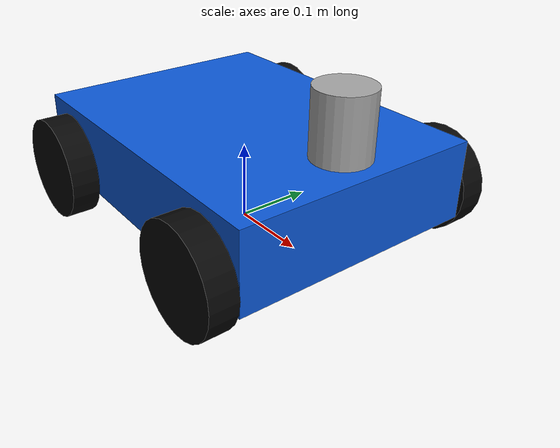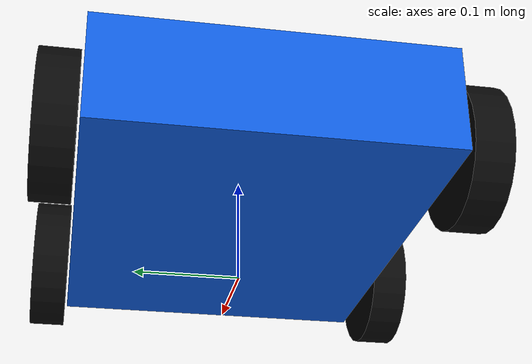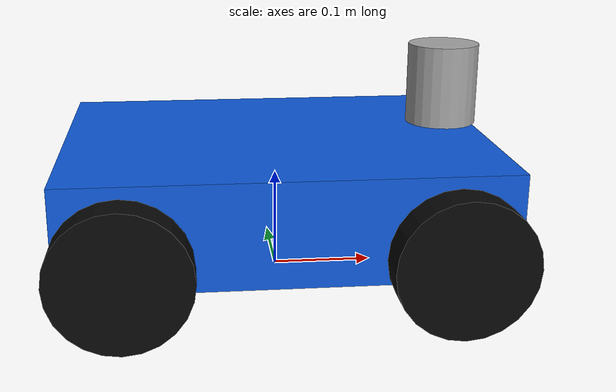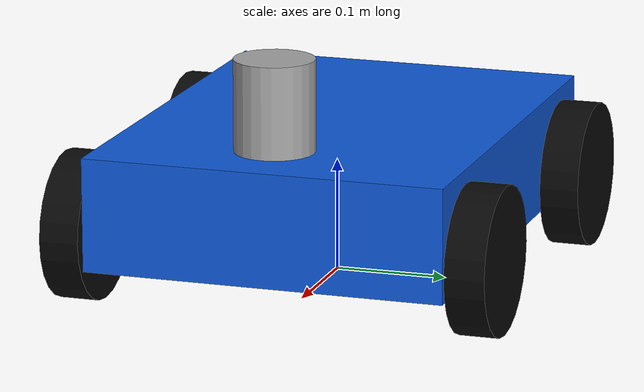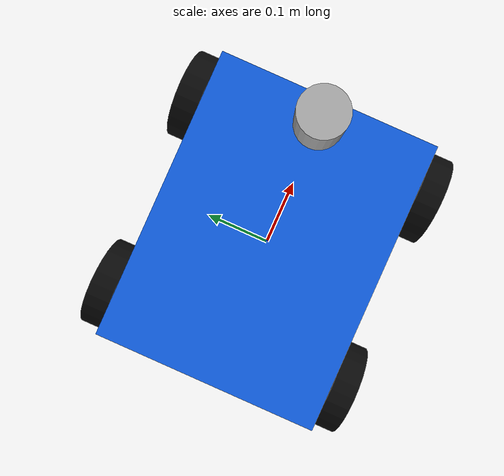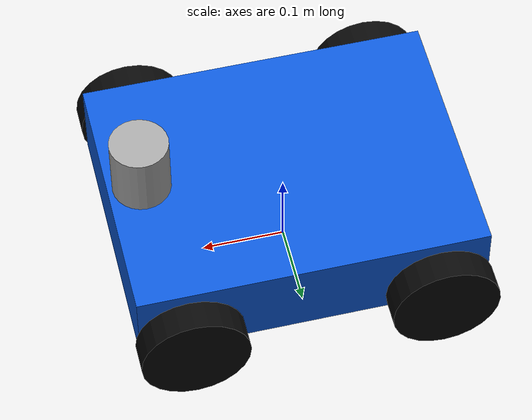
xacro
<?xml version="1.0"?>
<robot xmlns:xacro="http://www.ros.org/wiki/xacro"
       name="autonomous_rover">

  <xacro:property name="chassis_length" value="0.42"/>
  <xacro:property name="chassis_width"  value="0.32"/>
  <xacro:property name="chassis_height" value="0.10"/>

  <xacro:property name="wheel_radius" value="0.065"/>
  <xacro:property name="wheel_width"  value="0.035"/>

  <material name="black">
    <color rgba="0.03 0.03 0.03 1.0"/>
  </material>

  <material name="blue">
    <color rgba="0.05 0.35 0.85 1.0"/>
  </material>

  <material name="silver">
    <color rgba="0.65 0.65 0.65 1.0"/>
  </material>

  <material name="green">
    <color rgba="0.05 0.70 0.10 1.0"/>
  </material>

  <!-- Base -->
  <link name="base_link">
    <visual>
      <origin xyz="0 0 0.09"/>
      <geometry>
        <box size="${chassis_length} ${chassis_width} ${chassis_height}"/>
      </geometry>
      <material name="blue"/>
    </visual>

    <collision>
      <origin xyz="0 0 0.09"/>
      <geometry>
        <box size="${chassis_length} ${chassis_width} ${chassis_height}"/>
      </geometry>
    </collision>

    <inertial>
      <origin xyz="0 0 0.09"/>
      <mass value="2.0"/>
      <inertia ixx="0.03" ixy="0" ixz="0"
               iyy="0.03" iyz="0"
               izz="0.05"/>
    </inertial>
  </link>

  <!-- Wheel macro -->
  <xacro:macro name="wheel" params="name x y">
    <link name="${name}">
      <visual>
        <origin rpy="1.5708 0 0"/>
        <geometry>
          <cylinder radius="${wheel_radius}" length="${wheel_width}"/>
        </geometry>
        <material name="black"/>
      </visual>

      <collision>
        <origin rpy="1.5708 0 0"/>
        <geometry>
          <cylinder radius="${wheel_radius}" length="${wheel_width}"/>
        </geometry>
      </collision>

      <inertial>
        <mass value="0.15"/>
        <inertia ixx="0.001" ixy="0" ixz="0"
                 iyy="0.001" iyz="0"
                 izz="0.001"/>
      </inertial>
    </link>

    <joint name="${name}_joint" type="continuous">
      <parent link="base_link"/>
      <child link="${name}"/>
      <origin xyz="${x} ${y} 0.065"/>
      <axis xyz="0 1 0"/>
    </joint>
  </xacro:macro>

  <xacro:wheel name="front_left_wheel"  x="0.15"  y="0.18"/>
  <xacro:wheel name="rear_left_wheel"   x="-0.15" y="0.18"/>
  <xacro:wheel name="front_right_wheel" x="0.15"  y="-0.18"/>
  <xacro:wheel name="rear_right_wheel"  x="-0.15" y="-0.18"/>

  <!-- Sensor mast -->
  <link name="sensor_mount">
    <visual>
      <origin xyz="0 0 0.04"/>
      <geometry>
        <cylinder radius="0.035" length="0.08"/>
      </geometry>
      <material name="silver"/>
    </visual>
  </link>

  <joint name="sensor_mount_joint" type="fixed">
    <parent link="base_link"/>
    <child link="sensor_mount"/>
    <origin xyz="0.17 0 0.15"/>
  </joint>

  <!-- Simulated laser scanner -->
  <link name="laser_link">
    <visual>
      <geometry>
        <cylinder radius="0.025" length="0.02"/>
      </geometry>
      <material name="green"/>
    </visual>
  </link>

  <joint name="laser_joint" type="fixed">
    <parent link="sensor_mount"/>
    <child link="laser_link"/>
    <origin xyz="0 0 0.06"/>
  </joint>

  <!-- ROS robot state publisher / TF -->
  <gazebo reference="base_link">
    <material>Gazebo/Blue</material>
  </gazebo>

  <gazebo reference="front_left_wheel">
    <material>Gazebo/Black</material>
  </gazebo>
  <gazebo reference="rear_left_wheel">
    <material>Gazebo/Black</material>
  </gazebo>
  <gazebo reference="front_right_wheel">
    <material>Gazebo/Black</material>
  </gazebo>
  <gazebo reference="rear_right_wheel">
    <material>Gazebo/Black</material>
  </gazebo>

  <!-- Gazebo Harmonic diff-drive controller -->
  <gazebo>
    <plugin
      filename="gz-sim-diff-drive-system"
      name="gz::sim::systems::DiffDrive">
      <left_joint>front_left_wheel_joint</left_joint>
      <left_joint>rear_left_wheel_joint</left_joint>
      <right_joint>front_right_wheel_joint</right_joint>
      <right_joint>rear_right_wheel_joint</right_joint>

      <wheel_separation>0.36</wheel_separation>
      <wheel_radius>0.065</wheel_radius>

      <topic>/cmd_vel</topic>
      <odom_topic>/odom</odom_topic>
      <tf_topic>/tf</tf_topic>
      <frame_id>odom</frame_id>
      <child_frame_id>base_link</child_frame_id>

      <odom_publish_frequency>30</odom_publish_frequency>
    </plugin>
  </gazebo>

  <!-- Simulated 2D lidar -->
  <gazebo reference="laser_link">
    <sensor name="laser" type="gpu_lidar">
      <pose>0 0 0 0 0 0</pose>
      <topic>/scan</topic>
      <update_rate>10</update_rate>

      <lidar>
        <scan>
          <horizontal>
            <samples>360</samples>
            <resolution>1</resolution>
            <min_angle>-3.14159</min_angle>
            <max_angle>3.14159</max_angle>
          </horizontal>
        </scan>

        <range>
          <min>0.12</min>
          <max>8.0</max>
          <resolution>0.01</resolution>
        </range>
      </lidar>

      <always_on>true</always_on>
      <visualize>true</visualize>
    </sensor>
  </gazebo>

</robot>
